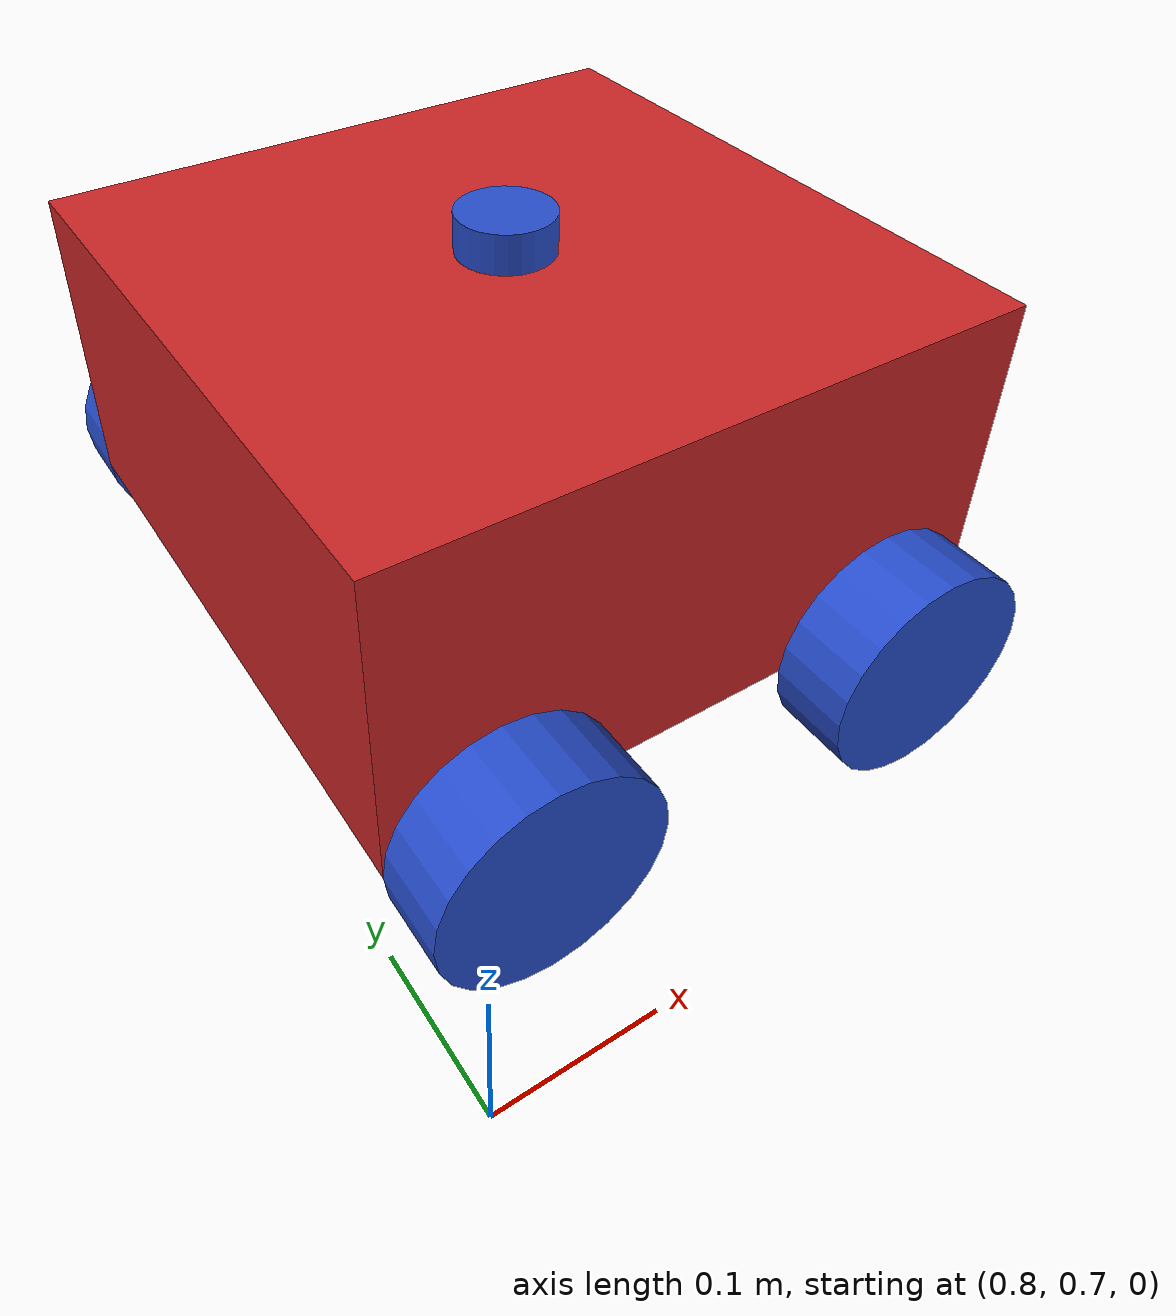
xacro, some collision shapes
<?xml version="1.0"?>
<robot xmlns:xacro="http://www.ros.org/wiki/xacro" name="simple_robot">

    <xacro:include filename="colors.xacro"/>

    <xacro:property name="box_side" value="0.4"/>
    <xacro:property name="wheel_radius" value="0.07"/>
    <xacro:property name="wheel_thickness" value="0.05"/>
    <xacro:property name="wheel_offset" value="0.07"/>
    <xacro:property name="lidar" value="0.05"/>

    <link name="world"></link>

    <!-- Base -->
    <joint name="base_joint" type="fixed">
        <origin xyz="1 1 0" rpy="0 0 0"/>
        <parent link="world"/>
        <child link="base_link"/>
    </joint>

    <link name="base_link">
        <visual>
            <geometry>
                <box size="${box_side} ${box_side} ${box_side/2}"/>
            </geometry>
            <material name="red"/>
            <origin xyz="0 0 ${box_side/4 + wheel_radius}" rpy="0 0 0"/>
        </visual>
        <collision>
            <geometry>
                <box size="${box_side} ${box_side} ${box_side/2}"/>
            </geometry>
            <origin xyz="0 0 ${box_side/4 + wheel_radius}" rpy="0 0 0"/>
        </collision>
        <inertial>
            <origin xyz="0 0 ${box_side/4 + wheel_radius}" rpy="0 0 0"/>
            <mass value="10"/>
            <inertia ixx="1.6" ixy="0" ixz="1.6" iyy="1.6" iyz="1.6" izz="1.6"/>
        </inertial>
    </link>

    <!-- Macro to define a wheel -->
<xacro:macro name="wheel" params="name x y z ry vy roll">
  <joint name="${name}_joint" type="continuous">
    <parent link="base_link"/>
    <child link="${name}_link"/>
    <origin xyz="${x} ${y} ${z}" rpy="${roll} 0 0"/>
    <axis xyz="0 ${ry} 0"/>
  </joint>

  <link name="${name}_link">
    <visual>
      <geometry>
        <cylinder length="${wheel_thickness}" radius="${wheel_radius}"/>
      </geometry>
      <material name="blue"/>
      <origin xyz="0 ${vy} 0" rpy="1.57 0 0"/>
    </visual>
    <collision>
      <geometry>
        <cylinder length="${wheel_thickness}" radius="${wheel_radius}"/>
      </geometry>
      <origin xyz="0 ${vy} 0" rpy="1.57 0 0"/>
    </collision>
    <inertial>
      <origin xyz="0 ${vy} 0"/>
      <mass value="1"/>
      <inertia ixx="0.002" iyy="0.002" izz="0.0025" ixy="0" ixz="0" iyz="0"/>
    </inertial>
  </link>
</xacro:macro>

<!-- Front Right -->
<xacro:wheel name="wheel_fr" x="${ box_side/2 - wheel_offset}" y="${-box_side/2}"
z="${wheel_radius}" ry="${1}" vy="${-wheel_thickness/2}" roll="${0}"/>

<!-- Front Left -->
<xacro:wheel name="wheel_fl" x="${ box_side/2 - wheel_offset}" y="${ box_side/2}"
z="${wheel_radius}" ry="${-1}" vy="${-wheel_thickness/2}" roll="${3.14}"/>

<!-- Back Right -->
<xacro:wheel name="wheel_br" x="${-box_side/2 + wheel_offset}" y="${-box_side/2}"
z="${wheel_radius}" ry="${1}" vy="${-wheel_thickness/2}" roll="${0}"/>

<!-- Back Left -->
<xacro:wheel name="wheel_bl" x="${-box_side/2 + wheel_offset}" y="${ box_side/2}"
z="${wheel_radius}" ry="${-1}" vy="${-wheel_thickness/2}" roll="${3.14}"/>

         <!-- === LiDAR === -->
    <joint name="lidar_joint" type="fixed">
        <parent link="base_link"/>
        <child link="lidar_link"/>
        <!-- Place LiDAR above the base box -->
        <origin xyz="0 0 ${box_side/2 + wheel_radius}" rpy="0 0 0"/>
    </joint>

    <link name="lidar_link">
  <!-- visual: use LDS mesh -->
  <visual>
    <geometry>
      <mesh filename="package://turtlebot3_description/meshes/sensors/lds.stl" scale="0.001 0.001 0.001"/>
    </geometry>
    <origin xyz="0 0 0.022" rpy="0 0 0"/>
    <material name="blue"/>
  </visual>

  <!-- collision: keep a simple cylinder -->
  <collision>
    <geometry>
      <cylinder length="0.05" radius="0.03"/>
    </geometry>
    <origin xyz="0 0 0" rpy="0 0 0"/>
  </collision>

  <!-- inertia -->
  <inertial>
    <origin xyz="0 0 0" rpy="0 0 0"/>
    <mass value="0.1"/>
    <inertia ixx="0.00017" iyy="0.00017" izz="0.000125" ixy="0" ixz="0" iyz="0"/>
  </inertial>
</link>

</robot>
